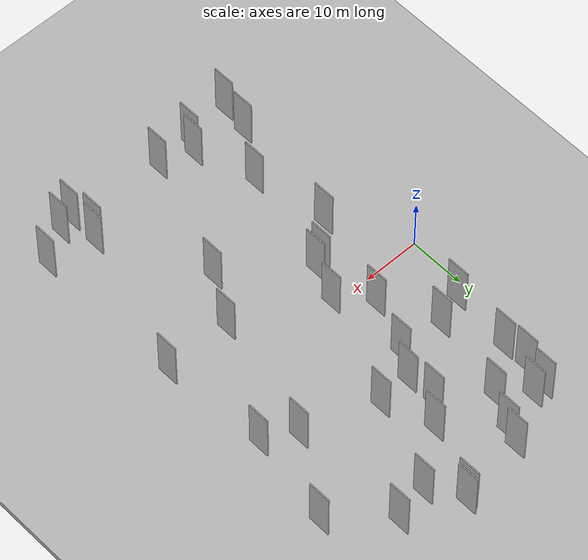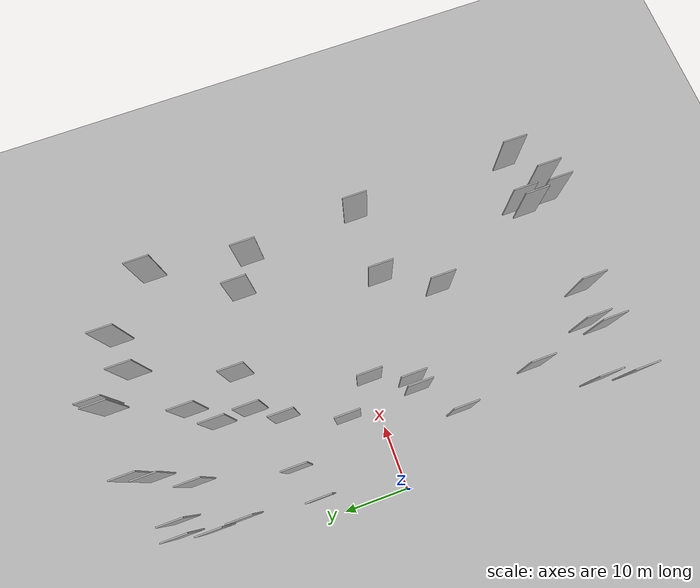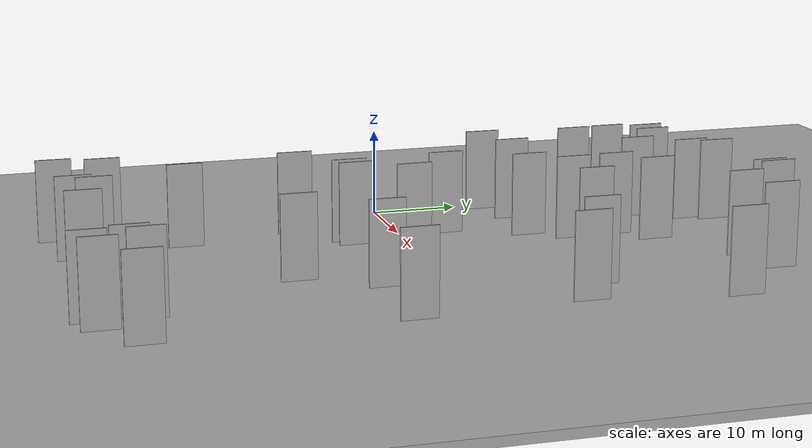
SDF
<?xml version="1.0" encoding="utf-8"?>

<sdf version="1.6">

   <world name="default">

      <gui fullscreen="0">

         <camera name="user_camera">

            <pose>-15 0 4.57585 0 0 0</pose>

            <view_controller>orbit</view_controller>

         </camera>

      </gui>

      <scene>

         <sky>

           <clouds>

             <speed>12</speed>

           </clouds>

         </sky>

         <ambient>0.4 0.4 0.4 1</ambient>

         <background>0.7 0.7 0.7 1</background>

         <shadows>1</shadows>

      </scene>

      <gravity>0 0 -9.8066</gravity>

      <magnetic_field>6e-06 2.3e-05 -4.2e-05</magnetic_field>

      <physics default="0" name="default_physics" type="ode">

         <ode>

            <solver>

               <type>quick</type>

               <iters>10</iters>

               <sor>1.0</sor>

               <use_dynamic_moi_rescaling>0</use_dynamic_moi_rescaling>

            </solver>

            <constraints>

               <cfm>0</cfm>

               <erp>0.2</erp>

               <contact_max_correcting_vel>100</contact_max_correcting_vel>

               <contact_surface_layer>0.001</contact_surface_layer>

            </constraints>

         </ode>

         <max_step_size>0.004</max_step_size>

         <real_time_factor>1</real_time_factor>

         <real_time_update_rate>250</real_time_update_rate>

      </physics>

      <light name="sun" type="directional">

         <cast_shadows>1</cast_shadows>

         <pose>0 0 10 0 0 0</pose>

         <diffuse>0.8 0.8 0.8 1</diffuse>

         <specular>0.2 0.2 0.2 1</specular>

         <attenuation>

            <range>1000</range>

            <constant>0.9</constant>

            <linear>0.01</linear>

            <quadratic>0.001</quadratic>

         </attenuation>

         <direction>-0.5 0.1 -0.9</direction>

      </light>

      <include>

         <name>ground_plane_1</name>

         <uri>model://HANNAS_ground_plane</uri>

         <pose>0 0 0  0 0 0</pose>

      </include>

      <include>

         <name>ground_plane_2</name>

         <uri>model://HANNAS_ground_plane</uri>

         <pose>100 0 0  0 0 0</pose>

      </include>

      <model name="HANNAS_wall_1">

         <static>1</static>

         <pose frame="">19.1370 18.1087 0.0 0.000000 0.000000 1.570796</pose>

         <link name="link">

            <pose frame="">0 0 5.00 0 0 0</pose>

            <collision name="collision">

               <geometry>

                  <box>

                     <size>4.00 0.2 10.00</size>

                  </box>

               </geometry>

               <max_contacts>10</max_contacts>

               <surface>

                  <contact>

                     <ode/>

                  </contact>

                  <bounce/>

                  <friction>

                     <torsional>

                        <ode/>

                     </torsional>

                     <ode/>

                  </friction>

               </surface>

            </collision>

            <visual name="visual">

               <cast_shadows>0</cast_shadows>

               <geometry>

                  <box>

                     <size>4.00 0.2 10.00</size>

                  </box>

               </geometry>

               <material>

                  <script>

                     <uri>model://HANNAS_wall/materials/scripts</uri>

                     <uri>model://HANNAS_wall/materials/textures</uri>

                     <name>vrc/HANNAS_wall</name>

                  </script>

               </material>

            </visual>

            <self_collide>0</self_collide>

            <enable_wind>0</enable_wind>

            <kinematic>0</kinematic>

         </link>

      </model>

      <model name="HANNAS_wall_2">

         <static>1</static>

         <pose frame="">19.7315 -37.1187 0.0 0.000000 0.000000 1.570796</pose>

         <link name="link">

            <pose frame="">0 0 5.00 0 0 0</pose>

            <collision name="collision">

               <geometry>

                  <box>

                     <size>4.00 0.2 10.00</size>

                  </box>

               </geometry>

               <max_contacts>10</max_contacts>

               <surface>

                  <contact>

                     <ode/>

                  </contact>

                  <bounce/>

                  <friction>

                     <torsional>

                        <ode/>

                     </torsional>

                     <ode/>

                  </friction>

               </surface>

            </collision>

            <visual name="visual">

               <cast_shadows>0</cast_shadows>

               <geometry>

                  <box>

                     <size>4.00 0.2 10.00</size>

                  </box>

               </geometry>

               <material>

                  <script>

                     <uri>model://HANNAS_wall/materials/scripts</uri>

                     <uri>model://HANNAS_wall/materials/textures</uri>

                     <name>vrc/HANNAS_wall</name>

                  </script>

               </material>

            </visual>

            <self_collide>0</self_collide>

            <enable_wind>0</enable_wind>

            <kinematic>0</kinematic>

         </link>

      </model>

      <model name="HANNAS_wall_3">

         <static>1</static>

         <pose frame="">3.2431 12.4929 0.0 0.000000 0.000000 1.570796</pose>

         <link name="link">

            <pose frame="">0 0 5.00 0 0 0</pose>

            <collision name="collision">

               <geometry>

                  <box>

                     <size>4.00 0.2 10.00</size>

                  </box>

               </geometry>

               <max_contacts>10</max_contacts>

               <surface>

                  <contact>

                     <ode/>

                  </contact>

                  <bounce/>

                  <friction>

                     <torsional>

                        <ode/>

                     </torsional>

                     <ode/>

                  </friction>

               </surface>

            </collision>

            <visual name="visual">

               <cast_shadows>0</cast_shadows>

               <geometry>

                  <box>

                     <size>4.00 0.2 10.00</size>

                  </box>

               </geometry>

               <material>

                  <script>

                     <uri>model://HANNAS_wall/materials/scripts</uri>

                     <uri>model://HANNAS_wall/materials/textures</uri>

                     <name>vrc/HANNAS_wall</name>

                  </script>

               </material>

            </visual>

            <self_collide>0</self_collide>

            <enable_wind>0</enable_wind>

            <kinematic>0</kinematic>

         </link>

      </model>

      <model name="HANNAS_wall_4">

         <static>1</static>

         <pose frame="">35.3643 -34.5909 0.0 0.000000 0.000000 1.570796</pose>

         <link name="link">

            <pose frame="">0 0 5.00 0 0 0</pose>

            <collision name="collision">

               <geometry>

                  <box>

                     <size>4.00 0.2 10.00</size>

                  </box>

               </geometry>

               <max_contacts>10</max_contacts>

               <surface>

                  <contact>

                     <ode/>

                  </contact>

                  <bounce/>

                  <friction>

                     <torsional>

                        <ode/>

                     </torsional>

                     <ode/>

                  </friction>

               </surface>

            </collision>

            <visual name="visual">

               <cast_shadows>0</cast_shadows>

               <geometry>

                  <box>

                     <size>4.00 0.2 10.00</size>

                  </box>

               </geometry>

               <material>

                  <script>

                     <uri>model://HANNAS_wall/materials/scripts</uri>

                     <uri>model://HANNAS_wall/materials/textures</uri>

                     <name>vrc/HANNAS_wall</name>

                  </script>

               </material>

            </visual>

            <self_collide>0</self_collide>

            <enable_wind>0</enable_wind>

            <kinematic>0</kinematic>

         </link>

      </model>

      <model name="HANNAS_wall_5">

         <static>1</static>

         <pose frame="">17.5887 -0.2086 0.0 0.000000 0.000000 1.570796</pose>

         <link name="link">

            <pose frame="">0 0 5.00 0 0 0</pose>

            <collision name="collision">

               <geometry>

                  <box>

                     <size>4.00 0.2 10.00</size>

                  </box>

               </geometry>

               <max_contacts>10</max_contacts>

               <surface>

                  <contact>

                     <ode/>

                  </contact>

                  <bounce/>

                  <friction>

                     <torsional>

                        <ode/>

                     </torsional>

                     <ode/>

                  </friction>

               </surface>

            </collision>

            <visual name="visual">

               <cast_shadows>0</cast_shadows>

               <geometry>

                  <box>

                     <size>4.00 0.2 10.00</size>

                  </box>

               </geometry>

               <material>

                  <script>

                     <uri>model://HANNAS_wall/materials/scripts</uri>

                     <uri>model://HANNAS_wall/materials/textures</uri>

                     <name>vrc/HANNAS_wall</name>

                  </script>

               </material>

            </visual>

            <self_collide>0</self_collide>

            <enable_wind>0</enable_wind>

            <kinematic>0</kinematic>

         </link>

      </model>

      <model name="HANNAS_wall_6">

         <static>1</static>

         <pose frame="">16.4084 13.7615 0.0 0.000000 0.000000 1.570796</pose>

         <link name="link">

            <pose frame="">0 0 5.00 0 0 0</pose>

            <collision name="collision">

               <geometry>

                  <box>

                     <size>4.00 0.2 10.00</size>

                  </box>

               </geometry>

               <max_contacts>10</max_contacts>

               <surface>

                  <contact>

                     <ode/>

                  </contact>

                  <bounce/>

                  <friction>

                     <torsional>

                        <ode/>

                     </torsional>

                     <ode/>

                  </friction>

               </surface>

            </collision>

            <visual name="visual">

               <cast_shadows>0</cast_shadows>

               <geometry>

                  <box>

                     <size>4.00 0.2 10.00</size>

                  </box>

               </geometry>

               <material>

                  <script>

                     <uri>model://HANNAS_wall/materials/scripts</uri>

                     <uri>model://HANNAS_wall/materials/textures</uri>

                     <name>vrc/HANNAS_wall</name>

                  </script>

               </material>

            </visual>

            <self_collide>0</self_collide>

            <enable_wind>0</enable_wind>

            <kinematic>0</kinematic>

         </link>

      </model>

      <model name="HANNAS_wall_7">

         <static>1</static>

         <pose frame="">37.7608 14.1524 0.0 0.000000 0.000000 1.570796</pose>

         <link name="link">

            <pose frame="">0 0 5.00 0 0 0</pose>

            <collision name="collision">

               <geometry>

                  <box>

                     <size>4.00 0.2 10.00</size>

                  </box>

               </geometry>

               <max_contacts>10</max_contacts>

               <surface>

                  <contact>

                     <ode/>

                  </contact>

                  <bounce/>

                  <friction>

                     <torsional>

                        <ode/>

                     </torsional>

                     <ode/>

                  </friction>

               </surface>

            </collision>

            <visual name="visual">

               <cast_shadows>0</cast_shadows>

               <geometry>

                  <box>

                     <size>4.00 0.2 10.00</size>

                  </box>

               </geometry>

               <material>

                  <script>

                     <uri>model://HANNAS_wall/materials/scripts</uri>

                     <uri>model://HANNAS_wall/materials/textures</uri>

                     <name>vrc/HANNAS_wall</name>

                  </script>

               </material>

            </visual>

            <self_collide>0</self_collide>

            <enable_wind>0</enable_wind>

            <kinematic>0</kinematic>

         </link>

      </model>

      <model name="HANNAS_wall_8">

         <static>1</static>

         <pose frame="">43.0211 11.1134 0.0 0.000000 0.000000 1.570796</pose>

         <link name="link">

            <pose frame="">0 0 5.00 0 0 0</pose>

            <collision name="collision">

               <geometry>

                  <box>

                     <size>4.00 0.2 10.00</size>

                  </box>

               </geometry>

               <max_contacts>10</max_contacts>

               <surface>

                  <contact>

                     <ode/>

                  </contact>

                  <bounce/>

                  <friction>

                     <torsional>

                        <ode/>

                     </torsional>

                     <ode/>

                  </friction>

               </surface>

            </collision>

            <visual name="visual">

               <cast_shadows>0</cast_shadows>

               <geometry>

                  <box>

                     <size>4.00 0.2 10.00</size>

                  </box>

               </geometry>

               <material>

                  <script>

                     <uri>model://HANNAS_wall/materials/scripts</uri>

                     <uri>model://HANNAS_wall/materials/textures</uri>

                     <name>vrc/HANNAS_wall</name>

                  </script>

               </material>

            </visual>

            <self_collide>0</self_collide>

            <enable_wind>0</enable_wind>

            <kinematic>0</kinematic>

         </link>

      </model>

      <model name="HANNAS_wall_9">

         <static>1</static>

         <pose frame="">27.6352 39.2542 0.0 0.000000 0.000000 1.570796</pose>

         <link name="link">

            <pose frame="">0 0 5.00 0 0 0</pose>

            <collision name="collision">

               <geometry>

                  <box>

                     <size>4.00 0.2 10.00</size>

                  </box>

               </geometry>

               <max_contacts>10</max_contacts>

               <surface>

                  <contact>

                     <ode/>

                  </contact>

                  <bounce/>

                  <friction>

                     <torsional>

                        <ode/>

                     </torsional>

                     <ode/>

                  </friction>

               </surface>

            </collision>

            <visual name="visual">

               <cast_shadows>0</cast_shadows>

               <geometry>

                  <box>

                     <size>4.00 0.2 10.00</size>

                  </box>

               </geometry>

               <material>

                  <script>

                     <uri>model://HANNAS_wall/materials/scripts</uri>

                     <uri>model://HANNAS_wall/materials/textures</uri>

                     <name>vrc/HANNAS_wall</name>

                  </script>

               </material>

            </visual>

            <self_collide>0</self_collide>

            <enable_wind>0</enable_wind>

            <kinematic>0</kinematic>

         </link>

      </model>

      <model name="HANNAS_wall_10">

         <static>1</static>

         <pose frame="">5.3457 -33.1951 0.0 0.000000 0.000000 1.570796</pose>

         <link name="link">

            <pose frame="">0 0 5.00 0 0 0</pose>

            <collision name="collision">

               <geometry>

                  <box>

                     <size>4.00 0.2 10.00</size>

                  </box>

               </geometry>

               <max_contacts>10</max_contacts>

               <surface>

                  <contact>

                     <ode/>

                  </contact>

                  <bounce/>

                  <friction>

                     <torsional>

                        <ode/>

                     </torsional>

                     <ode/>

                  </friction>

               </surface>

            </collision>

            <visual name="visual">

               <cast_shadows>0</cast_shadows>

               <geometry>

                  <box>

                     <size>4.00 0.2 10.00</size>

                  </box>

               </geometry>

               <material>

                  <script>

                     <uri>model://HANNAS_wall/materials/scripts</uri>

                     <uri>model://HANNAS_wall/materials/textures</uri>

                     <name>vrc/HANNAS_wall</name>

                  </script>

               </material>

            </visual>

            <self_collide>0</self_collide>

            <enable_wind>0</enable_wind>

            <kinematic>0</kinematic>

         </link>

      </model>

      <model name="HANNAS_wall_11">

         <static>1</static>

         <pose frame="">44.3338 -7.5655 0.0 0.000000 0.000000 1.570796</pose>

         <link name="link">

            <pose frame="">0 0 5.00 0 0 0</pose>

            <collision name="collision">

               <geometry>

                  <box>

                     <size>4.00 0.2 10.00</size>

                  </box>

               </geometry>

               <max_contacts>10</max_contacts>

               <surface>

                  <contact>

                     <ode/>

                  </contact>

                  <bounce/>

                  <friction>

                     <torsional>

                        <ode/>

                     </torsional>

                     <ode/>

                  </friction>

               </surface>

            </collision>

            <visual name="visual">

               <cast_shadows>0</cast_shadows>

               <geometry>

                  <box>

                     <size>4.00 0.2 10.00</size>

                  </box>

               </geometry>

               <material>

                  <script>

                     <uri>model://HANNAS_wall/materials/scripts</uri>

                     <uri>model://HANNAS_wall/materials/textures</uri>

                     <name>vrc/HANNAS_wall</name>

                  </script>

               </material>

            </visual>

            <self_collide>0</self_collide>

            <enable_wind>0</enable_wind>

            <kinematic>0</kinematic>

         </link>

      </model>

      <model name="HANNAS_wall_12">

         <static>1</static>

         <pose frame="">32.4670 -7.5167 0.0 0.000000 0.000000 1.570796</pose>

         <link name="link">

            <pose frame="">0 0 5.00 0 0 0</pose>

            <collision name="collision">

               <geometry>

                  <box>

                     <size>4.00 0.2 10.00</size>

                  </box>

               </geometry>

               <max_contacts>10</max_contacts>

               <surface>

                  <contact>

                     <ode/>

                  </contact>

                  <bounce/>

                  <friction>

                     <torsional>

                        <ode/>

                     </torsional>

                     <ode/>

                  </friction>

               </surface>

            </collision>

            <visual name="visual">

               <cast_shadows>0</cast_shadows>

               <geometry>

                  <box>

                     <size>4.00 0.2 10.00</size>

                  </box>

               </geometry>

               <material>

                  <script>

                     <uri>model://HANNAS_wall/materials/scripts</uri>

                     <uri>model://HANNAS_wall/materials/textures</uri>

                     <name>vrc/HANNAS_wall</name>

                  </script>

               </material>

            </visual>

            <self_collide>0</self_collide>

            <enable_wind>0</enable_wind>

            <kinematic>0</kinematic>

         </link>

      </model>

      <model name="HANNAS_wall_13">

         <static>1</static>

         <pose frame="">45.7846 27.0314 0.0 0.000000 0.000000 1.570796</pose>

         <link name="link">

            <pose frame="">0 0 5.00 0 0 0</pose>

            <collision name="collision">

               <geometry>

                  <box>

                     <size>4.00 0.2 10.00</size>

                  </box>

               </geometry>

               <max_contacts>10</max_contacts>

               <surface>

                  <contact>

                     <ode/>

                  </contact>

                  <bounce/>

                  <friction>

                     <torsional>

                        <ode/>

                     </torsional>

                     <ode/>

                  </friction>

               </surface>

            </collision>

            <visual name="visual">

               <cast_shadows>0</cast_shadows>

               <geometry>

                  <box>

                     <size>4.00 0.2 10.00</size>

                  </box>

               </geometry>

               <material>

                  <script>

                     <uri>model://HANNAS_wall/materials/scripts</uri>

                     <uri>model://HANNAS_wall/materials/textures</uri>

                     <name>vrc/HANNAS_wall</name>

                  </script>

               </material>

            </visual>

            <self_collide>0</self_collide>

            <enable_wind>0</enable_wind>

            <kinematic>0</kinematic>

         </link>

      </model>

      <model name="HANNAS_wall_14">

         <static>1</static>

         <pose frame="">13.5777 -6.6819 0.0 0.000000 0.000000 1.570796</pose>

         <link name="link">

            <pose frame="">0 0 5.00 0 0 0</pose>

            <collision name="collision">

               <geometry>

                  <box>

                     <size>4.00 0.2 10.00</size>

                  </box>

               </geometry>

               <max_contacts>10</max_contacts>

               <surface>

                  <contact>

                     <ode/>

                  </contact>

                  <bounce/>

                  <friction>

                     <torsional>

                        <ode/>

                     </torsional>

                     <ode/>

                  </friction>

               </surface>

            </collision>

            <visual name="visual">

               <cast_shadows>0</cast_shadows>

               <geometry>

                  <box>

                     <size>4.00 0.2 10.00</size>

                  </box>

               </geometry>

               <material>

                  <script>

                     <uri>model://HANNAS_wall/materials/scripts</uri>

                     <uri>model://HANNAS_wall/materials/textures</uri>

                     <name>vrc/HANNAS_wall</name>

                  </script>

               </material>

            </visual>

            <self_collide>0</self_collide>

            <enable_wind>0</enable_wind>

            <kinematic>0</kinematic>

         </link>

      </model>

      <model name="HANNAS_wall_15">

         <static>1</static>

         <pose frame="">18.9090 23.3441 0.0 0.000000 0.000000 1.570796</pose>

         <link name="link">

            <pose frame="">0 0 5.00 0 0 0</pose>

            <collision name="collision">

               <geometry>

                  <box>

                     <size>4.00 0.2 10.00</size>

                  </box>

               </geometry>

               <max_contacts>10</max_contacts>

               <surface>

                  <contact>

                     <ode/>

                  </contact>

                  <bounce/>

                  <friction>

                     <torsional>

                        <ode/>

                     </torsional>

                     <ode/>

                  </friction>

               </surface>

            </collision>

            <visual name="visual">

               <cast_shadows>0</cast_shadows>

               <geometry>

                  <box>

                     <size>4.00 0.2 10.00</size>

                  </box>

               </geometry>

               <material>

                  <script>

                     <uri>model://HANNAS_wall/materials/scripts</uri>

                     <uri>model://HANNAS_wall/materials/textures</uri>

                     <name>vrc/HANNAS_wall</name>

                  </script>

               </material>

            </visual>

            <self_collide>0</self_collide>

            <enable_wind>0</enable_wind>

            <kinematic>0</kinematic>

         </link>

      </model>

      <model name="HANNAS_wall_16">

         <static>1</static>

         <pose frame="">4.3807 23.7181 0.0 0.000000 0.000000 1.570796</pose>

         <link name="link">

            <pose frame="">0 0 5.00 0 0 0</pose>

            <collision name="collision">

               <geometry>

                  <box>

                     <size>4.00 0.2 10.00</size>

                  </box>

               </geometry>

               <max_contacts>10</max_contacts>

               <surface>

                  <contact>

                     <ode/>

                  </contact>

                  <bounce/>

                  <friction>

                     <torsional>

                        <ode/>

                     </torsional>

                     <ode/>

                  </friction>

               </surface>

            </collision>

            <visual name="visual">

               <cast_shadows>0</cast_shadows>

               <geometry>

                  <box>

                     <size>4.00 0.2 10.00</size>

                  </box>

               </geometry>

               <material>

                  <script>

                     <uri>model://HANNAS_wall/materials/scripts</uri>

                     <uri>model://HANNAS_wall/materials/textures</uri>

                     <name>vrc/HANNAS_wall</name>

                  </script>

               </material>

            </visual>

            <self_collide>0</self_collide>

            <enable_wind>0</enable_wind>

            <kinematic>0</kinematic>

         </link>

      </model>

      <model name="HANNAS_wall_17">

         <static>1</static>

         <pose frame="">4.4644 -38.5228 0.0 0.000000 0.000000 1.570796</pose>

         <link name="link">

            <pose frame="">0 0 5.00 0 0 0</pose>

            <collision name="collision">

               <geometry>

                  <box>

                     <size>4.00 0.2 10.00</size>

                  </box>

               </geometry>

               <max_contacts>10</max_contacts>

               <surface>

                  <contact>

                     <ode/>

                  </contact>

                  <bounce/>

                  <friction>

                     <torsional>

                        <ode/>

                     </torsional>

                     <ode/>

                  </friction>

               </surface>

            </collision>

            <visual name="visual">

               <cast_shadows>0</cast_shadows>

               <geometry>

                  <box>

                     <size>4.00 0.2 10.00</size>

                  </box>

               </geometry>

               <material>

                  <script>

                     <uri>model://HANNAS_wall/materials/scripts</uri>

                     <uri>model://HANNAS_wall/materials/textures</uri>

                     <name>vrc/HANNAS_wall</name>

                  </script>

               </material>

            </visual>

            <self_collide>0</self_collide>

            <enable_wind>0</enable_wind>

            <kinematic>0</kinematic>

         </link>

      </model>

      <model name="HANNAS_wall_18">

         <static>1</static>

         <pose frame="">22.2404 27.0013 0.0 0.000000 0.000000 1.570796</pose>

         <link name="link">

            <pose frame="">0 0 5.00 0 0 0</pose>

            <collision name="collision">

               <geometry>

                  <box>

                     <size>4.00 0.2 10.00</size>

                  </box>

               </geometry>

               <max_contacts>10</max_contacts>

               <surface>

                  <contact>

                     <ode/>

                  </contact>

                  <bounce/>

                  <friction>

                     <torsional>

                        <ode/>

                     </torsional>

                     <ode/>

                  </friction>

               </surface>

            </collision>

            <visual name="visual">

               <cast_shadows>0</cast_shadows>

               <geometry>

                  <box>

                     <size>4.00 0.2 10.00</size>

                  </box>

               </geometry>

               <material>

                  <script>

                     <uri>model://HANNAS_wall/materials/scripts</uri>

                     <uri>model://HANNAS_wall/materials/textures</uri>

                     <name>vrc/HANNAS_wall</name>

                  </script>

               </material>

            </visual>

            <self_collide>0</self_collide>

            <enable_wind>0</enable_wind>

            <kinematic>0</kinematic>

         </link>

      </model>

      <model name="HANNAS_wall_19">

         <static>1</static>

         <pose frame="">37.2279 34.9495 0.0 0.000000 0.000000 1.570796</pose>

         <link name="link">

            <pose frame="">0 0 5.00 0 0 0</pose>

            <collision name="collision">

               <geometry>

                  <box>

                     <size>4.00 0.2 10.00</size>

                  </box>

               </geometry>

               <max_contacts>10</max_contacts>

               <surface>

                  <contact>

                     <ode/>

                  </contact>

                  <bounce/>

                  <friction>

                     <torsional>

                        <ode/>

                     </torsional>

                     <ode/>

                  </friction>

               </surface>

            </collision>

            <visual name="visual">

               <cast_shadows>0</cast_shadows>

               <geometry>

                  <box>

                     <size>4.00 0.2 10.00</size>

                  </box>

               </geometry>

               <material>

                  <script>

                     <uri>model://HANNAS_wall/materials/scripts</uri>

                     <uri>model://HANNAS_wall/materials/textures</uri>

                     <name>vrc/HANNAS_wall</name>

                  </script>

               </material>

            </visual>

            <self_collide>0</self_collide>

            <enable_wind>0</enable_wind>

            <kinematic>0</kinematic>

         </link>

      </model>

      <model name="HANNAS_wall_20">

         <static>1</static>

         <pose frame="">11.6564 29.0144 0.0 0.000000 0.000000 1.570796</pose>

         <link name="link">

            <pose frame="">0 0 5.00 0 0 0</pose>

            <collision name="collision">

               <geometry>

                  <box>

                     <size>4.00 0.2 10.00</size>

                  </box>

               </geometry>

               <max_contacts>10</max_contacts>

               <surface>

                  <contact>

                     <ode/>

                  </contact>

                  <bounce/>

                  <friction>

                     <torsional>

                        <ode/>

                     </torsional>

                     <ode/>

                  </friction>

               </surface>

            </collision>

            <visual name="visual">

               <cast_shadows>0</cast_shadows>

               <geometry>

                  <box>

                     <size>4.00 0.2 10.00</size>

                  </box>

               </geometry>

               <material>

                  <script>

                     <uri>model://HANNAS_wall/materials/scripts</uri>

                     <uri>model://HANNAS_wall/materials/textures</uri>

                     <name>vrc/HANNAS_wall</name>

                  </script>

               </material>

            </visual>

            <self_collide>0</self_collide>

            <enable_wind>0</enable_wind>

            <kinematic>0</kinematic>

         </link>

      </model>

      <model name="HANNAS_wall_21">

         <static>1</static>

         <pose frame="">13.9996 -35.2255 0.0 0.000000 0.000000 1.570796</pose>

         <link name="link">

            <pose frame="">0 0 5.00 0 0 0</pose>

            <collision name="collision">

               <geometry>

                  <box>

                     <size>4.00 0.2 10.00</size>

                  </box>

               </geometry>

               <max_contacts>10</max_contacts>

               <surface>

                  <contact>

                     <ode/>

                  </contact>

                  <bounce/>

                  <friction>

                     <torsional>

                        <ode/>

                     </torsional>

                     <ode/>

                  </friction>

               </surface>

            </collision>

            <visual name="visual">

               <cast_shadows>0</cast_shadows>

               <geometry>

                  <box>

                     <size>4.00 0.2 10.00</size>

                  </box>

               </geometry>

               <material>

                  <script>

                     <uri>model://HANNAS_wall/materials/scripts</uri>

                     <uri>model://HANNAS_wall/materials/textures</uri>

                     <name>vrc/HANNAS_wall</name>

                  </script>

               </material>

            </visual>

            <self_collide>0</self_collide>

            <enable_wind>0</enable_wind>

            <kinematic>0</kinematic>

         </link>

      </model>

      <model name="HANNAS_wall_22">

         <static>1</static>

         <pose frame="">44.6532 -34.7596 0.0 0.000000 0.000000 1.570796</pose>

         <link name="link">

            <pose frame="">0 0 5.00 0 0 0</pose>

            <collision name="collision">

               <geometry>

                  <box>

                     <size>4.00 0.2 10.00</size>

                  </box>

               </geometry>

               <max_contacts>10</max_contacts>

               <surface>

                  <contact>

                     <ode/>

                  </contact>

                  <bounce/>

                  <friction>

                     <torsional>

                        <ode/>

                     </torsional>

                     <ode/>

                  </friction>

               </surface>

            </collision>

            <visual name="visual">

               <cast_shadows>0</cast_shadows>

               <geometry>

                  <box>

                     <size>4.00 0.2 10.00</size>

                  </box>

               </geometry>

               <material>

                  <script>

                     <uri>model://HANNAS_wall/materials/scripts</uri>

                     <uri>model://HANNAS_wall/materials/textures</uri>

                     <name>vrc/HANNAS_wall</name>

                  </script>

               </material>

            </visual>

            <self_collide>0</self_collide>

            <enable_wind>0</enable_wind>

            <kinematic>0</kinematic>

         </link>

      </model>

      <model name="HANNAS_wall_23">

         <static>1</static>

         <pose frame="">12.8703 -37.3537 0.0 0.000000 0.000000 1.570796</pose>

         <link name="link">

            <pose frame="">0 0 5.00 0 0 0</pose>

            <collision name="collision">

               <geometry>

                  <box>

                     <size>4.00 0.2 10.00</size>

                  </box>

               </geometry>

               <max_contacts>10</max_contacts>

               <surface>

                  <contact>

                     <ode/>

                  </contact>

                  <bounce/>

                  <friction>

                     <torsional>

                        <ode/>

                     </torsional>

                     <ode/>

                  </friction>

               </surface>

            </collision>

            <visual name="visual">

               <cast_shadows>0</cast_shadows>

               <geometry>

                  <box>

                     <size>4.00 0.2 10.00</size>

                  </box>

               </geometry>

               <material>

                  <script>

                     <uri>model://HANNAS_wall/materials/scripts</uri>

                     <uri>model://HANNAS_wall/materials/textures</uri>

                     <name>vrc/HANNAS_wall</name>

                  </script>

               </material>

            </visual>

            <self_collide>0</self_collide>

            <enable_wind>0</enable_wind>

            <kinematic>0</kinematic>

         </link>

      </model>

      <model name="HANNAS_wall_24">

         <static>1</static>

         <pose frame="">8.4963 14.4028 0.0 0.000000 0.000000 1.570796</pose>

         <link name="link">

            <pose frame="">0 0 5.00 0 0 0</pose>

            <collision name="collision">

               <geometry>

                  <box>

                     <size>4.00 0.2 10.00</size>

                  </box>

               </geometry>

               <max_contacts>10</max_contacts>

               <surface>

                  <contact>

                     <ode/>

                  </contact>

                  <bounce/>

                  <friction>

                     <torsional>

                        <ode/>

                     </torsional>

                     <ode/>

                  </friction>

               </surface>

            </collision>

            <visual name="visual">

               <cast_shadows>0</cast_shadows>

               <geometry>

                  <box>

                     <size>4.00 0.2 10.00</size>

                  </box>

               </geometry>

               <material>

                  <script>

                     <uri>model://HANNAS_wall/materials/scripts</uri>

                     <uri>model://HANNAS_wall/materials/textures</uri>

                     <name>vrc/HANNAS_wall</name>

                  </script>

               </material>

            </visual>

            <self_collide>0</self_collide>

            <enable_wind>0</enable_wind>

            <kinematic>0</kinematic>

         </link>

      </model>

      <model name="HANNAS_wall_25">

         <static>1</static>

         <pose frame="">4.2167 28.1523 0.0 0.000000 0.000000 1.570796</pose>

         <link name="link">

            <pose frame="">0 0 5.00 0 0 0</pose>

            <collision name="collision">

               <geometry>

                  <box>

                     <size>4.00 0.2 10.00</size>

                  </box>

               </geometry>

               <max_contacts>10</max_contacts>

               <surface>

                  <contact>

                     <ode/>

                  </contact>

                  <bounce/>

                  <friction>

                     <torsional>

                        <ode/>

                     </torsional>

                     <ode/>

                  </friction>

               </surface>

            </collision>

            <visual name="visual">

               <cast_shadows>0</cast_shadows>

               <geometry>

                  <box>

                     <size>4.00 0.2 10.00</size>

                  </box>

               </geometry>

               <material>

                  <script>

                     <uri>model://HANNAS_wall/materials/scripts</uri>

                     <uri>model://HANNAS_wall/materials/textures</uri>

                     <name>vrc/HANNAS_wall</name>

                  </script>

               </material>

            </visual>

            <self_collide>0</self_collide>

            <enable_wind>0</enable_wind>

            <kinematic>0</kinematic>

         </link>

      </model>

      <model name="HANNAS_wall_26">

         <static>1</static>

         <pose frame="">15.1355 -6.2408 0.0 0.000000 0.000000 1.570796</pose>

         <link name="link">

            <pose frame="">0 0 5.00 0 0 0</pose>

            <collision name="collision">

               <geometry>

                  <box>

                     <size>4.00 0.2 10.00</size>

                  </box>

               </geometry>

               <max_contacts>10</max_contacts>

               <surface>

                  <contact>

                     <ode/>

                  </contact>

                  <bounce/>

                  <friction>

                     <torsional>

                        <ode/>

                     </torsional>

                     <ode/>

                  </friction>

               </surface>

            </collision>

            <visual name="visual">

               <cast_shadows>0</cast_shadows>

               <geometry>

                  <box>

                     <size>4.00 0.2 10.00</size>

                  </box>

               </geometry>

               <material>

                  <script>

                     <uri>model://HANNAS_wall/materials/scripts</uri>

                     <uri>model://HANNAS_wall/materials/textures</uri>

                     <name>vrc/HANNAS_wall</name>

                  </script>

               </material>

            </visual>

            <self_collide>0</self_collide>

            <enable_wind>0</enable_wind>

            <kinematic>0</kinematic>

         </link>

      </model>

      <model name="HANNAS_wall_27">

         <static>1</static>

         <pose frame="">31.0925 33.7276 0.0 0.000000 0.000000 1.570796</pose>

         <link name="link">

            <pose frame="">0 0 5.00 0 0 0</pose>

            <collision name="collision">

               <geometry>

                  <box>

                     <size>4.00 0.2 10.00</size>

                  </box>

               </geometry>

               <max_contacts>10</max_contacts>

               <surface>

                  <contact>

                     <ode/>

                  </contact>

                  <bounce/>

                  <friction>

                     <torsional>

                        <ode/>

                     </torsional>

                     <ode/>

                  </friction>

               </surface>

            </collision>

            <visual name="visual">

               <cast_shadows>0</cast_shadows>

               <geometry>

                  <box>

                     <size>4.00 0.2 10.00</size>

                  </box>

               </geometry>

               <material>

                  <script>

                     <uri>model://HANNAS_wall/materials/scripts</uri>

                     <uri>model://HANNAS_wall/materials/textures</uri>

                     <name>vrc/HANNAS_wall</name>

                  </script>

               </material>

            </visual>

            <self_collide>0</self_collide>

            <enable_wind>0</enable_wind>

            <kinematic>0</kinematic>

         </link>

      </model>

      <model name="HANNAS_wall_28">

         <static>1</static>

         <pose frame="">15.5711 37.3441 0.0 0.000000 0.000000 1.570796</pose>

         <link name="link">

            <pose frame="">0 0 5.00 0 0 0</pose>

            <collision name="collision">

               <geometry>

                  <box>

                     <size>4.00 0.2 10.00</size>

                  </box>

               </geometry>

               <max_contacts>10</max_contacts>

               <surface>

                  <contact>

                     <ode/>

                  </contact>

                  <bounce/>

                  <friction>

                     <torsional>

                        <ode/>

                     </torsional>

                     <ode/>

                  </friction>

               </surface>

            </collision>

            <visual name="visual">

               <cast_shadows>0</cast_shadows>

               <geometry>

                  <box>

                     <size>4.00 0.2 10.00</size>

                  </box>

               </geometry>

               <material>

                  <script>

                     <uri>model://HANNAS_wall/materials/scripts</uri>

                     <uri>model://HANNAS_wall/materials/textures</uri>

                     <name>vrc/HANNAS_wall</name>

                  </script>

               </material>

            </visual>

            <self_collide>0</self_collide>

            <enable_wind>0</enable_wind>

            <kinematic>0</kinematic>

         </link>

      </model>

      <model name="HANNAS_wall_29">

         <static>1</static>

         <pose frame="">36.5148 -33.0948 0.0 0.000000 0.000000 1.570796</pose>

         <link name="link">

            <pose frame="">0 0 5.00 0 0 0</pose>

            <collision name="collision">

               <geometry>

                  <box>

                     <size>4.00 0.2 10.00</size>

                  </box>

               </geometry>

               <max_contacts>10</max_contacts>

               <surface>

                  <contact>

                     <ode/>

                  </contact>

                  <bounce/>

                  <friction>

                     <torsional>

                        <ode/>

                     </torsional>

                     <ode/>

                  </friction>

               </surface>

            </collision>

            <visual name="visual">

               <cast_shadows>0</cast_shadows>

               <geometry>

                  <box>

                     <size>4.00 0.2 10.00</size>

                  </box>

               </geometry>

               <material>

                  <script>

                     <uri>model://HANNAS_wall/materials/scripts</uri>

                     <uri>model://HANNAS_wall/materials/textures</uri>

                     <name>vrc/HANNAS_wall</name>

                  </script>

               </material>

            </visual>

            <self_collide>0</self_collide>

            <enable_wind>0</enable_wind>

            <kinematic>0</kinematic>

         </link>

      </model>

      <model name="HANNAS_wall_30">

         <static>1</static>

         <pose frame="">10.6923 -24.7757 0.0 0.000000 0.000000 1.570796</pose>

         <link name="link">

            <pose frame="">0 0 5.00 0 0 0</pose>

            <collision name="collision">

               <geometry>

                  <box>

                     <size>4.00 0.2 10.00</size>

                  </box>

               </geometry>

               <max_contacts>10</max_contacts>

               <surface>

                  <contact>

                     <ode/>

                  </contact>

                  <bounce/>

                  <friction>

                     <torsional>

                        <ode/>

                     </torsional>

                     <ode/>

                  </friction>

               </surface>

            </collision>

            <visual name="visual">

               <cast_shadows>0</cast_shadows>

               <geometry>

                  <box>

                     <size>4.00 0.2 10.00</size>

                  </box>

               </geometry>

               <material>

                  <script>

                     <uri>model://HANNAS_wall/materials/scripts</uri>

                     <uri>model://HANNAS_wall/materials/textures</uri>

                     <name>vrc/HANNAS_wall</name>

                  </script>

               </material>

            </visual>

            <self_collide>0</self_collide>

            <enable_wind>0</enable_wind>

            <kinematic>0</kinematic>

         </link>

      </model>

      <model name="HANNAS_wall_31">

         <static>1</static>

         <pose frame="">7.2647 32.7920 0.0 0.000000 0.000000 1.570796</pose>

         <link name="link">

            <pose frame="">0 0 5.00 0 0 0</pose>

            <collision name="collision">

               <geometry>

                  <box>

                     <size>4.00 0.2 10.00</size>

                  </box>

               </geometry>

               <max_contacts>10</max_contacts>

               <surface>

                  <contact>

                     <ode/>

                  </contact>

                  <bounce/>

                  <friction>

                     <torsional>

                        <ode/>

                     </torsional>

                     <ode/>

                  </friction>

               </surface>

            </collision>

            <visual name="visual">

               <cast_shadows>0</cast_shadows>

               <geometry>

                  <box>

                     <size>4.00 0.2 10.00</size>

                  </box>

               </geometry>

               <material>

                  <script>

                     <uri>model://HANNAS_wall/materials/scripts</uri>

                     <uri>model://HANNAS_wall/materials/textures</uri>

                     <name>vrc/HANNAS_wall</name>

                  </script>

               </material>

            </visual>

            <self_collide>0</self_collide>

            <enable_wind>0</enable_wind>

            <kinematic>0</kinematic>

         </link>

      </model>

      <model name="HANNAS_wall_32">

         <static>1</static>

         <pose frame="">5.0823 32.8019 0.0 0.000000 0.000000 1.570796</pose>

         <link name="link">

            <pose frame="">0 0 5.00 0 0 0</pose>

            <collision name="collision">

               <geometry>

                  <box>

                     <size>4.00 0.2 10.00</size>

                  </box>

               </geometry>

               <max_contacts>10</max_contacts>

               <surface>

                  <contact>

                     <ode/>

                  </contact>

                  <bounce/>

                  <friction>

                     <torsional>

                        <ode/>

                     </torsional>

                     <ode/>

                  </friction>

               </surface>

            </collision>

            <visual name="visual">

               <cast_shadows>0</cast_shadows>

               <geometry>

                  <box>

                     <size>4.00 0.2 10.00</size>

                  </box>

               </geometry>

               <material>

                  <script>

                     <uri>model://HANNAS_wall/materials/scripts</uri>

                     <uri>model://HANNAS_wall/materials/textures</uri>

                     <name>vrc/HANNAS_wall</name>

                  </script>

               </material>

            </visual>

            <self_collide>0</self_collide>

            <enable_wind>0</enable_wind>

            <kinematic>0</kinematic>

         </link>

      </model>

      <model name="HANNAS_wall_33">

         <static>1</static>

         <pose frame="">8.2478 -11.7069 0.0 0.000000 0.000000 1.570796</pose>

         <link name="link">

            <pose frame="">0 0 5.00 0 0 0</pose>

            <collision name="collision">

               <geometry>

                  <box>

                     <size>4.00 0.2 10.00</size>

                  </box>

               </geometry>

               <max_contacts>10</max_contacts>

               <surface>

                  <contact>

                     <ode/>

                  </contact>

                  <bounce/>

                  <friction>

                     <torsional>

                        <ode/>

                     </torsional>

                     <ode/>

                  </friction>

               </surface>

            </collision>

            <visual name="visual">

               <cast_shadows>0</cast_shadows>

               <geometry>

                  <box>

                     <size>4.00 0.2 10.00</size>

                  </box>

               </geometry>

               <material>

                  <script>

                     <uri>model://HANNAS_wall/materials/scripts</uri>

                     <uri>model://HANNAS_wall/materials/textures</uri>

                     <name>vrc/HANNAS_wall</name>

                  </script>

               </material>

            </visual>

            <self_collide>0</self_collide>

            <enable_wind>0</enable_wind>

            <kinematic>0</kinematic>

         </link>

      </model>

      <model name="HANNAS_wall_34">

         <static>1</static>

         <pose frame="">12.9662 4.8580 0.0 0.000000 0.000000 1.570796</pose>

         <link name="link">

            <pose frame="">0 0 5.00 0 0 0</pose>

            <collision name="collision">

               <geometry>

                  <box>

                     <size>4.00 0.2 10.00</size>

                  </box>

               </geometry>

               <max_contacts>10</max_contacts>

               <surface>

                  <contact>

                     <ode/>

                  </contact>

                  <bounce/>

                  <friction>

                     <torsional>

                        <ode/>

                     </torsional>

                     <ode/>

                  </friction>

               </surface>

            </collision>

            <visual name="visual">

               <cast_shadows>0</cast_shadows>

               <geometry>

                  <box>

                     <size>4.00 0.2 10.00</size>

                  </box>

               </geometry>

               <material>

                  <script>

                     <uri>model://HANNAS_wall/materials/scripts</uri>

                     <uri>model://HANNAS_wall/materials/textures</uri>

                     <name>vrc/HANNAS_wall</name>

                  </script>

               </material>

            </visual>

            <self_collide>0</self_collide>

            <enable_wind>0</enable_wind>

            <kinematic>0</kinematic>

         </link>

      </model>

      <model name="HANNAS_wall_35">

         <static>1</static>

         <pose frame="">27.6523 -15.7785 0.0 0.000000 0.000000 1.570796</pose>

         <link name="link">

            <pose frame="">0 0 5.00 0 0 0</pose>

            <collision name="collision">

               <geometry>

                  <box>

                     <size>4.00 0.2 10.00</size>

                  </box>

               </geometry>

               <max_contacts>10</max_contacts>

               <surface>

                  <contact>

                     <ode/>

                  </contact>

                  <bounce/>

                  <friction>

                     <torsional>

                        <ode/>

                     </torsional>

                     <ode/>

                  </friction>

               </surface>

            </collision>

            <visual name="visual">

               <cast_shadows>0</cast_shadows>

               <geometry>

                  <box>

                     <size>4.00 0.2 10.00</size>

                  </box>

               </geometry>

               <material>

                  <script>

                     <uri>model://HANNAS_wall/materials/scripts</uri>

                     <uri>model://HANNAS_wall/materials/textures</uri>

                     <name>vrc/HANNAS_wall</name>

                  </script>

               </material>

            </visual>

            <self_collide>0</self_collide>

            <enable_wind>0</enable_wind>

            <kinematic>0</kinematic>

         </link>

      </model>

      <model name="HANNAS_wall_36">

         <static>1</static>

         <pose frame="">36.2583 -38.8908 0.0 0.000000 0.000000 1.570796</pose>

         <link name="link">

            <pose frame="">0 0 5.00 0 0 0</pose>

            <collision name="collision">

               <geometry>

                  <box>

                     <size>4.00 0.2 10.00</size>

                  </box>

               </geometry>

               <max_contacts>10</max_contacts>

               <surface>

                  <contact>

                     <ode/>

                  </contact>

                  <bounce/>

                  <friction>

                     <torsional>

                        <ode/>

                     </torsional>

                     <ode/>

                  </friction>

               </surface>

            </collision>

            <visual name="visual">

               <cast_shadows>0</cast_shadows>

               <geometry>

                  <box>

                     <size>4.00 0.2 10.00</size>

                  </box>

               </geometry>

               <material>

                  <script>

                     <uri>model://HANNAS_wall/materials/scripts</uri>

                     <uri>model://HANNAS_wall/materials/textures</uri>

                     <name>vrc/HANNAS_wall</name>

                  </script>

               </material>

            </visual>

            <self_collide>0</self_collide>

            <enable_wind>0</enable_wind>

            <kinematic>0</kinematic>

         </link>

      </model>

      <model name="HANNAS_wall_37">

         <static>1</static>

         <pose frame="">14.4879 34.5662 0.0 0.000000 0.000000 1.570796</pose>

         <link name="link">

            <pose frame="">0 0 5.00 0 0 0</pose>

            <collision name="collision">

               <geometry>

                  <box>

                     <size>4.00 0.2 10.00</size>

                  </box>

               </geometry>

               <max_contacts>10</max_contacts>

               <surface>

                  <contact>

                     <ode/>

                  </contact>

                  <bounce/>

                  <friction>

                     <torsional>

                        <ode/>

                     </torsional>

                     <ode/>

                  </friction>

               </surface>

            </collision>

            <visual name="visual">

               <cast_shadows>0</cast_shadows>

               <geometry>

                  <box>

                     <size>4.00 0.2 10.00</size>

                  </box>

               </geometry>

               <material>

                  <script>

                     <uri>model://HANNAS_wall/materials/scripts</uri>

                     <uri>model://HANNAS_wall/materials/textures</uri>

                     <name>vrc/HANNAS_wall</name>

                  </script>

               </material>

            </visual>

            <self_collide>0</self_collide>

            <enable_wind>0</enable_wind>

            <kinematic>0</kinematic>

         </link>

      </model>

      <model name="HANNAS_wall_38">

         <static>1</static>

         <pose frame="">39.0471 -38.1693 0.0 0.000000 0.000000 1.570796</pose>

         <link name="link">

            <pose frame="">0 0 5.00 0 0 0</pose>

            <collision name="collision">

               <geometry>

                  <box>

                     <size>4.00 0.2 10.00</size>

                  </box>

               </geometry>

               <max_contacts>10</max_contacts>

               <surface>

                  <contact>

                     <ode/>

                  </contact>

                  <bounce/>

                  <friction>

                     <torsional>

                        <ode/>

                     </torsional>

                     <ode/>

                  </friction>

               </surface>

            </collision>

            <visual name="visual">

               <cast_shadows>0</cast_shadows>

               <geometry>

                  <box>

                     <size>4.00 0.2 10.00</size>

                  </box>

               </geometry>

               <material>

                  <script>

                     <uri>model://HANNAS_wall/materials/scripts</uri>

                     <uri>model://HANNAS_wall/materials/textures</uri>

                     <name>vrc/HANNAS_wall</name>

                  </script>

               </material>

            </visual>

            <self_collide>0</self_collide>

            <enable_wind>0</enable_wind>

            <kinematic>0</kinematic>

         </link>

      </model>

      <model name="HANNAS_wall_39">

         <static>1</static>

         <pose frame="">25.1548 18.5324 0.0 0.000000 0.000000 1.570796</pose>

         <link name="link">

            <pose frame="">0 0 5.00 0 0 0</pose>

            <collision name="collision">

               <geometry>

                  <box>

                     <size>4.00 0.2 10.00</size>

                  </box>

               </geometry>

               <max_contacts>10</max_contacts>

               <surface>

                  <contact>

                     <ode/>

                  </contact>

                  <bounce/>

                  <friction>

                     <torsional>

                        <ode/>

                     </torsional>

                     <ode/>

                  </friction>

               </surface>

            </collision>

            <visual name="visual">

               <cast_shadows>0</cast_shadows>

               <geometry>

                  <box>

                     <size>4.00 0.2 10.00</size>

                  </box>

               </geometry>

               <material>

                  <script>

                     <uri>model://HANNAS_wall/materials/scripts</uri>

                     <uri>model://HANNAS_wall/materials/textures</uri>

                     <name>vrc/HANNAS_wall</name>

                  </script>

               </material>

            </visual>

            <self_collide>0</self_collide>

            <enable_wind>0</enable_wind>

            <kinematic>0</kinematic>

         </link>

      </model>

      <model name="HANNAS_wall_40">

         <static>1</static>

         <pose frame="">26.7889 38.6594 0.0 0.000000 0.000000 1.570796</pose>

         <link name="link">

            <pose frame="">0 0 5.00 0 0 0</pose>

            <collision name="collision">

               <geometry>

                  <box>

                     <size>4.00 0.2 10.00</size>

                  </box>

               </geometry>

               <max_contacts>10</max_contacts>

               <surface>

                  <contact>

                     <ode/>

                  </contact>

                  <bounce/>

                  <friction>

                     <torsional>

                        <ode/>

                     </torsional>

                     <ode/>

                  </friction>

               </surface>

            </collision>

            <visual name="visual">

               <cast_shadows>0</cast_shadows>

               <geometry>

                  <box>

                     <size>4.00 0.2 10.00</size>

                  </box>

               </geometry>

               <material>

                  <script>

                     <uri>model://HANNAS_wall/materials/scripts</uri>

                     <uri>model://HANNAS_wall/materials/textures</uri>

                     <name>vrc/HANNAS_wall</name>

                  </script>

               </material>

            </visual>

            <self_collide>0</self_collide>

            <enable_wind>0</enable_wind>

            <kinematic>0</kinematic>

         </link>

      </model>

   </world>

</sdf>
